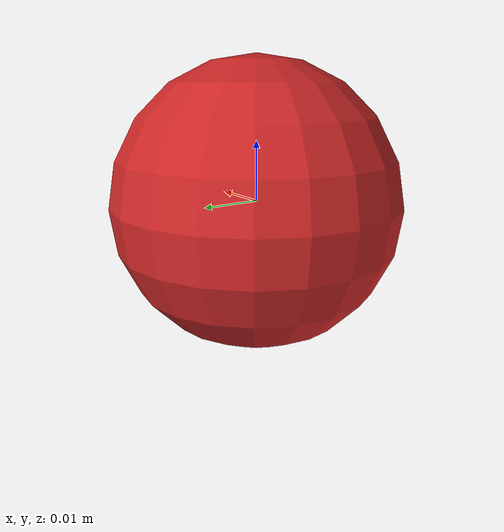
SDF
<?xml version='1.0'?>
<sdf version='1.7'>
  <model name='sphere'>
    <link name='link_0'>
      <pose>-0 0 0 0 -0 0</pose>
      <gravity>0</gravity>
      <self_collide>0</self_collide>
      <kinematic>0</kinematic>
      <enable_wind>0</enable_wind>
      <visual name='visual'>
        <pose>0 0 0 0 -0 0</pose>
        <geometry>
          <sphere>
            <radius>0.0240416</radius>
          </sphere>
        </geometry>
        <material>
          <lighting>1</lighting>
          <script>
            <uri>file://media/materials/scripts/gazebo.material</uri>
            <name>Gazebo/Red</name>
          </script>
        </material>
        <transparency>0</transparency>
        <cast_shadows>1</cast_shadows>
      </visual>
    </link>
    <static>1</static>
    <allow_auto_disable>1</allow_auto_disable>
  </model>
</sdf>
